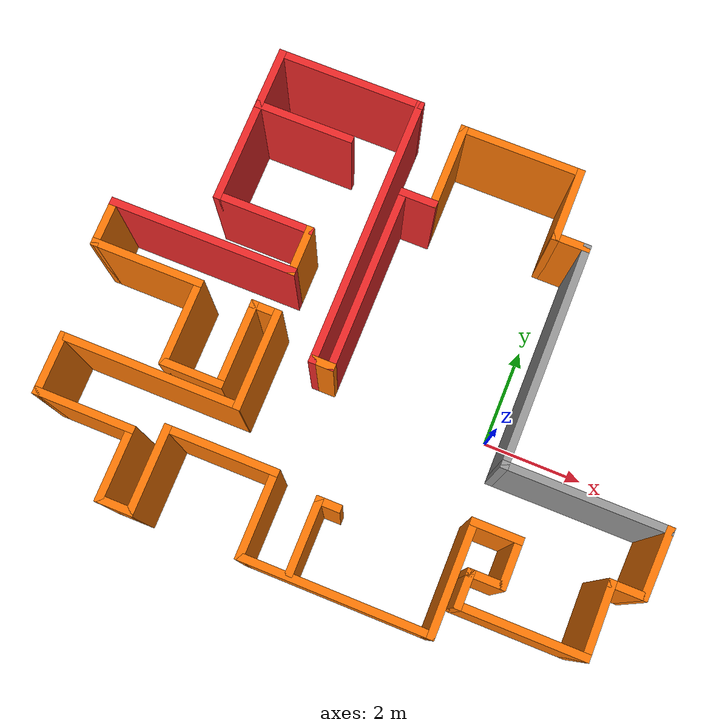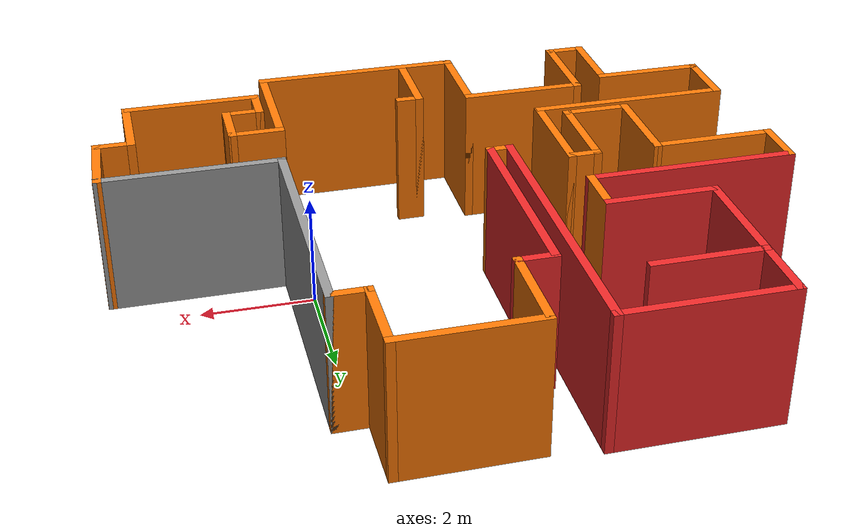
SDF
<?xml version='1.0'?>
<sdf version='1.6'>
  <model name='map_86'>
    <pose frame=''>-2.35722 0.647708 0 0 -0 0</pose>
    <link name='Wall_0'>
      <collision name='Wall_0_Collision'>
        <geometry>
          <box>
            <size>3.25 0.15 2.5</size>
          </box>
        </geometry>
        <pose frame=''>0 0 1.25 0 -0 0</pose>
      </collision>
      <visual name='Wall_0_Visual'>
        <pose frame=''>0 0 1.25 0 -0 0</pose>
        <geometry>
          <box>
            <size>3.25 0.15 2.5</size>
          </box>
        </geometry>
        <material>
          <script>
            <uri>file://media/materials/scripts/gazebo.material</uri>
            <name>Gazebo/Grey</name>
          </script>
          <ambient>1 1 1 1</ambient>
        </material>
        <meta>
          <layer>0</layer>
        </meta>
      </visual>
      <pose frame=''>4.24853 -1.3 0 0 -0 3.14159</pose>
    </link>
    <link name='Wall_1'>
      <collision name='Wall_1_Collision'>
        <geometry>
          <box>
            <size>4.5 0.15 2.5</size>
          </box>
        </geometry>
        <pose frame=''>0 0 1.25 0 -0 0</pose>
      </collision>
      <visual name='Wall_1_Visual'>
        <pose frame=''>0 0 1.25 0 -0 0</pose>
        <geometry>
          <box>
            <size>4.5 0.15 2.5</size>
          </box>
        </geometry>
        <material>
          <script>
            <uri>file://media/materials/scripts/gazebo.material</uri>
            <name>Gazebo/Grey</name>
          </script>
          <ambient>1 1 1 1</ambient>
        </material>
        <meta>
          <layer>0</layer>
        </meta>
      </visual>
      <pose frame=''>2.69853 0.875 0 0 -0 1.5708</pose>
    </link>
    <link name='Wall_10'>
      <collision name='Wall_10_Collision'>
        <geometry>
          <box>
            <size>3 0.15 2.5</size>
          </box>
        </geometry>
        <pose frame=''>0 0 1.25 0 -0 0</pose>
      </collision>
      <visual name='Wall_10_Visual'>
        <pose frame=''>0 0 1.25 0 -0 0</pose>
        <geometry>
          <box>
            <size>3 0.15 2.5</size>
          </box>
        </geometry>
        <material>
          <script>
            <uri>file://media/materials/scripts/gazebo.material</uri>
            <name>Gazebo/Grey</name>
          </script>
          <ambient>0.937255 0.160784 0.160784 1</ambient>
        </material>
        <meta>
          <layer>0</layer>
        </meta>
      </visual>
      <pose frame=''>-2.62647 4.55 0 0 -0 3.14159</pose>
    </link>
    <link name='Wall_11'>
      <collision name='Wall_11_Collision'>
        <geometry>
          <box>
            <size>3.25 0.15 2.5</size>
          </box>
        </geometry>
        <pose frame=''>0 0 1.25 0 -0 0</pose>
      </collision>
      <visual name='Wall_11_Visual'>
        <pose frame=''>0 0 1.25 0 -0 0</pose>
        <geometry>
          <box>
            <size>3.25 0.15 2.5</size>
          </box>
        </geometry>
        <material>
          <script>
            <uri>file://media/materials/scripts/gazebo.material</uri>
            <name>Gazebo/Grey</name>
          </script>
          <ambient>0.937255 0.160784 0.160784 1</ambient>
        </material>
        <meta>
          <layer>0</layer>
        </meta>
      </visual>
      <pose frame=''>-4.05147 3 0 0 -0 -1.5708</pose>
    </link>
    <link name='Wall_12'>
      <collision name='Wall_12_Collision'>
        <geometry>
          <box>
            <size>2 0.15 2.5</size>
          </box>
        </geometry>
        <pose frame=''>0 0 1.25 0 -0 0</pose>
      </collision>
      <visual name='Wall_12_Visual'>
        <pose frame=''>0 0 1.25 0 -0 0</pose>
        <geometry>
          <box>
            <size>2 0.15 2.5</size>
          </box>
        </geometry>
        <material>
          <script>
            <uri>file://media/materials/scripts/gazebo.material</uri>
            <name>Gazebo/Grey</name>
          </script>
          <ambient>0.937255 0.160784 0.160784 1</ambient>
        </material>
        <meta>
          <layer>0</layer>
        </meta>
      </visual>
      <pose frame=''>-3.12647 1.45 0 0 -0 0</pose>
    </link>
    <link name='Wall_13'>
      <collision name='Wall_13_Collision'>
        <geometry>
          <box>
            <size>1 0.15 2.5</size>
          </box>
        </geometry>
        <pose frame=''>0 0 1.25 0 -0 0</pose>
      </collision>
      <visual name='Wall_13_Visual'>
        <pose frame=''>0 0 1.25 0 -0 0</pose>
        <geometry>
          <box>
            <size>1 0.15 2.5</size>
          </box>
        </geometry>
        <material>
          <script>
            <uri>file://media/materials/scripts/gazebo.material</uri>
            <name>Gazebo/Grey</name>
          </script>
          <ambient>0.996078 0.47451 0.0196078 1</ambient>
        </material>
        <meta>
          <layer>0</layer>
        </meta>
      </visual>
      <pose frame=''>-2.20147 1.025 0 0 -0 -1.5708</pose>
    </link>
    <link name='Wall_14'>
      <collision name='Wall_14_Collision'>
        <geometry>
          <box>
            <size>3.75 0.15 2.5</size>
          </box>
        </geometry>
        <pose frame=''>0 0 1.25 0 -0 0</pose>
      </collision>
      <visual name='Wall_14_Visual'>
        <pose frame=''>0 0 1.25 0 -0 0</pose>
        <geometry>
          <box>
            <size>3.75 0.15 2.5</size>
          </box>
        </geometry>
        <material>
          <script>
            <uri>file://media/materials/scripts/gazebo.material</uri>
            <name>Gazebo/Grey</name>
          </script>
          <ambient>0.937255 0.160784 0.160784 1</ambient>
        </material>
        <meta>
          <layer>0</layer>
        </meta>
      </visual>
      <pose frame=''>-4.00147 0.6 0 0 -0 3.14159</pose>
    </link>
    <link name='Wall_15'>
      <collision name='Wall_15_Collision'>
        <geometry>
          <box>
            <size>1 0.15 2.5</size>
          </box>
        </geometry>
        <pose frame=''>0 0 1.25 0 -0 0</pose>
      </collision>
      <visual name='Wall_15_Visual'>
        <pose frame=''>0 0 1.25 0 -0 0</pose>
        <geometry>
          <box>
            <size>1 0.15 2.5</size>
          </box>
        </geometry>
        <material>
          <script>
            <uri>file://media/materials/scripts/gazebo.material</uri>
            <name>Gazebo/Grey</name>
          </script>
          <ambient>0.996078 0.47451 0.0196078 1</ambient>
        </material>
        <meta>
          <layer>0</layer>
        </meta>
      </visual>
      <pose frame=''>-5.80147 0.175 0 0 -0 -1.5708</pose>
    </link>
    <link name='Wall_16'>
      <collision name='Wall_16_Collision'>
        <geometry>
          <box>
            <size>2.25 0.15 2.5</size>
          </box>
        </geometry>
        <pose frame=''>0 0 1.25 0 -0 0</pose>
      </collision>
      <visual name='Wall_16_Visual'>
        <pose frame=''>0 0 1.25 0 -0 0</pose>
        <geometry>
          <box>
            <size>2.25 0.15 2.5</size>
          </box>
        </geometry>
        <material>
          <script>
            <uri>file://media/materials/scripts/gazebo.material</uri>
            <name>Gazebo/Grey</name>
          </script>
          <ambient>0.996078 0.47451 0.0196078 1</ambient>
        </material>
        <meta>
          <layer>0</layer>
        </meta>
      </visual>
      <pose frame=''>-4.75147 -0.25 0 0 -0 0</pose>
    </link>
    <link name='Wall_17'>
      <collision name='Wall_17_Collision'>
        <geometry>
          <box>
            <size>1.75 0.15 2.5</size>
          </box>
        </geometry>
        <pose frame=''>0 0 1.25 0 -0 0</pose>
      </collision>
      <visual name='Wall_17_Visual'>
        <pose frame=''>0 0 1.25 0 -0 0</pose>
        <geometry>
          <box>
            <size>1.75 0.15 2.5</size>
          </box>
        </geometry>
        <material>
          <script>
            <uri>file://media/materials/scripts/gazebo.material</uri>
            <name>Gazebo/Grey</name>
          </script>
          <ambient>0.996078 0.47451 0.0196078 1</ambient>
        </material>
        <meta>
          <layer>0</layer>
        </meta>
      </visual>
      <pose frame=''>-3.70147 -1.05 0 0 -0 -1.5708</pose>
    </link>
    <link name='Wall_18'>
      <collision name='Wall_18_Collision'>
        <geometry>
          <box>
            <size>1.25 0.15 2.5</size>
          </box>
        </geometry>
        <pose frame=''>0 0 1.25 0 -0 0</pose>
      </collision>
      <visual name='Wall_18_Visual'>
        <pose frame=''>0 0 1.25 0 -0 0</pose>
        <geometry>
          <box>
            <size>1.25 0.15 2.5</size>
          </box>
        </geometry>
        <material>
          <script>
            <uri>file://media/materials/scripts/gazebo.material</uri>
            <name>Gazebo/Grey</name>
          </script>
          <ambient>0.996078 0.47451 0.0196078 1</ambient>
        </material>
        <meta>
          <layer>0</layer>
        </meta>
      </visual>
      <pose frame=''>-3.15147 -1.85 0 0 -0 0</pose>
    </link>
    <link name='Wall_19'>
      <collision name='Wall_19_Collision'>
        <geometry>
          <box>
            <size>1.75 0.15 2.5</size>
          </box>
        </geometry>
        <pose frame=''>0 0 1.25 0 -0 0</pose>
      </collision>
      <visual name='Wall_19_Visual'>
        <pose frame=''>0 0 1.25 0 -0 0</pose>
        <geometry>
          <box>
            <size>1.75 0.15 2.5</size>
          </box>
        </geometry>
        <material>
          <script>
            <uri>file://media/materials/scripts/gazebo.material</uri>
            <name>Gazebo/Grey</name>
          </script>
          <ambient>0.996078 0.47451 0.0196078 1</ambient>
        </material>
        <meta>
          <layer>0</layer>
        </meta>
      </visual>
      <pose frame=''>-2.60147 -1.05 0 0 -0 1.5708</pose>
    </link>
    <link name='Wall_2'>
      <collision name='Wall_2_Collision'>
        <geometry>
          <box>
            <size>0.75 0.15 2.5</size>
          </box>
        </geometry>
        <pose frame=''>0 0 1.25 0 -0 0</pose>
      </collision>
      <visual name='Wall_2_Visual'>
        <pose frame=''>0 0 1.25 0 -0 0</pose>
        <geometry>
          <box>
            <size>0.75 0.15 2.5</size>
          </box>
        </geometry>
        <material>
          <script>
            <uri>file://media/materials/scripts/gazebo.material</uri>
            <name>Gazebo/Grey</name>
          </script>
          <ambient>0.996078 0.47451 0.0196078 1</ambient>
        </material>
        <meta>
          <layer>0</layer>
        </meta>
      </visual>
      <pose frame=''>2.39853 3.05 0 0 -0 3.14159</pose>
    </link>
    <link name='Wall_20'>
      <collision name='Wall_20_Collision'>
        <geometry>
          <box>
            <size>0.588086 0.15 2.5</size>
          </box>
        </geometry>
        <pose frame=''>0 0 1.25 0 -0 0</pose>
      </collision>
      <visual name='Wall_20_Visual'>
        <pose frame=''>0 0 1.25 0 -0 0</pose>
        <geometry>
          <box>
            <size>0.588086 0.15 2.5</size>
          </box>
        </geometry>
        <material>
          <script>
            <uri>file://media/materials/scripts/gazebo.material</uri>
            <name>Gazebo/Grey</name>
          </script>
          <ambient>0.996078 0.47451 0.0196078 1</ambient>
        </material>
        <meta>
          <layer>0</layer>
        </meta>
      </visual>
      <pose frame=''>-2.38243 -0.25 0 0 -0 0</pose>
    </link>
    <link name='Wall_21'>
      <collision name='Wall_21_Collision'>
        <geometry>
          <box>
            <size>2 0.15 2.5</size>
          </box>
        </geometry>
        <pose frame=''>0 0 1.25 0 -0 0</pose>
      </collision>
      <visual name='Wall_21_Visual'>
        <pose frame=''>0 0 1.25 0 -0 0</pose>
        <geometry>
          <box>
            <size>2 0.15 2.5</size>
          </box>
        </geometry>
        <material>
          <script>
            <uri>file://media/materials/scripts/gazebo.material</uri>
            <name>Gazebo/Grey</name>
          </script>
          <ambient>0.996078 0.47451 0.0196078 1</ambient>
        </material>
        <meta>
          <layer>0</layer>
        </meta>
      </visual>
      <pose frame=''>-2.14025 -1.175 0 0 -0 -1.5708</pose>
    </link>
    <link name='Wall_22'>
      <collision name='Wall_22_Collision'>
        <geometry>
          <box>
            <size>3.58809 0.15 2.5</size>
          </box>
        </geometry>
        <pose frame=''>0 0 1.25 0 -0 0</pose>
      </collision>
      <visual name='Wall_22_Visual'>
        <pose frame=''>0 0 1.25 0 -0 0</pose>
        <geometry>
          <box>
            <size>3.58809 0.15 2.5</size>
          </box>
        </geometry>
        <material>
          <script>
            <uri>file://media/materials/scripts/gazebo.material</uri>
            <name>Gazebo/Grey</name>
          </script>
          <ambient>0.996078 0.47451 0.0196078 1</ambient>
        </material>
        <meta>
          <layer>0</layer>
        </meta>
      </visual>
      <pose frame=''>-3.88243 -2.1 0 0 -0 3.14159</pose>
    </link>
    <link name='Wall_23'>
      <collision name='Wall_23_Collision'>
        <geometry>
          <box>
            <size>1.25 0.15 2.5</size>
          </box>
        </geometry>
        <pose frame=''>0 0 1.25 0 -0 0</pose>
      </collision>
      <visual name='Wall_23_Visual'>
        <pose frame=''>0 0 1.25 0 -0 0</pose>
        <geometry>
          <box>
            <size>1.25 0.15 2.5</size>
          </box>
        </geometry>
        <material>
          <script>
            <uri>file://media/materials/scripts/gazebo.material</uri>
            <name>Gazebo/Grey</name>
          </script>
          <ambient>0.996078 0.47451 0.0196078 1</ambient>
        </material>
        <meta>
          <layer>0</layer>
        </meta>
      </visual>
      <pose frame=''>-5.60147 -2.65 0 0 -0 -1.5708</pose>
    </link>
    <link name='Wall_24'>
      <collision name='Wall_24_Collision'>
        <geometry>
          <box>
            <size>2 0.15 2.5</size>
          </box>
        </geometry>
        <pose frame=''>0 0 1.25 0 -0 0</pose>
      </collision>
      <visual name='Wall_24_Visual'>
        <pose frame=''>0 0 1.25 0 -0 0</pose>
        <geometry>
          <box>
            <size>2 0.15 2.5</size>
          </box>
        </geometry>
        <material>
          <script>
            <uri>file://media/materials/scripts/gazebo.material</uri>
            <name>Gazebo/Grey</name>
          </script>
          <ambient>0.996078 0.47451 0.0196078 1</ambient>
        </material>
        <meta>
          <layer>0</layer>
        </meta>
      </visual>
      <pose frame=''>-4.67647 -3.2 0 0 -0 0</pose>
    </link>
    <link name='Wall_25'>
      <collision name='Wall_25_Collision'>
        <geometry>
          <box>
            <size>1.5 0.15 2.5</size>
          </box>
        </geometry>
        <pose frame=''>0 0 1.25 0 -0 0</pose>
      </collision>
      <visual name='Wall_25_Visual'>
        <pose frame=''>0 0 1.25 0 -0 0</pose>
        <geometry>
          <box>
            <size>1.5 0.15 2.5</size>
          </box>
        </geometry>
        <material>
          <script>
            <uri>file://media/materials/scripts/gazebo.material</uri>
            <name>Gazebo/Grey</name>
          </script>
          <ambient>0.996078 0.47451 0.0196078 1</ambient>
        </material>
        <meta>
          <layer>0</layer>
        </meta>
      </visual>
      <pose frame=''>-3.75147 -3.875 0 0 -0 -1.5708</pose>
    </link>
    <link name='Wall_26'>
      <collision name='Wall_26_Collision'>
        <geometry>
          <box>
            <size>0.75 0.15 2.5</size>
          </box>
        </geometry>
        <pose frame=''>0 0 1.25 0 -0 0</pose>
      </collision>
      <visual name='Wall_26_Visual'>
        <pose frame=''>0 0 1.25 0 -0 0</pose>
        <geometry>
          <box>
            <size>0.75 0.15 2.5</size>
          </box>
        </geometry>
        <material>
          <script>
            <uri>file://media/materials/scripts/gazebo.material</uri>
            <name>Gazebo/Grey</name>
          </script>
          <ambient>0.996078 0.47451 0.0196078 1</ambient>
        </material>
        <meta>
          <layer>0</layer>
        </meta>
      </visual>
      <pose frame=''>-3.45147 -4.55 0 0 -0 0</pose>
    </link>
    <link name='Wall_27'>
      <collision name='Wall_27_Collision'>
        <geometry>
          <box>
            <size>1.75 0.15 2.5</size>
          </box>
        </geometry>
        <pose frame=''>0 0 1.25 0 -0 0</pose>
      </collision>
      <visual name='Wall_27_Visual'>
        <pose frame=''>0 0 1.25 0 -0 0</pose>
        <geometry>
          <box>
            <size>1.75 0.15 2.5</size>
          </box>
        </geometry>
        <material>
          <script>
            <uri>file://media/materials/scripts/gazebo.material</uri>
            <name>Gazebo/Grey</name>
          </script>
          <ambient>0.996078 0.47451 0.0196078 1</ambient>
        </material>
        <meta>
          <layer>0</layer>
        </meta>
      </visual>
      <pose frame=''>-3.15147 -3.75 0 0 -0 1.5708</pose>
    </link>
    <link name='Wall_28'>
      <collision name='Wall_28_Collision'>
        <geometry>
          <box>
            <size>2.25 0.15 2.5</size>
          </box>
        </geometry>
        <pose frame=''>0 0 1.25 0 -0 0</pose>
      </collision>
      <visual name='Wall_28_Visual'>
        <pose frame=''>0 0 1.25 0 -0 0</pose>
        <geometry>
          <box>
            <size>2.25 0.15 2.5</size>
          </box>
        </geometry>
        <material>
          <script>
            <uri>file://media/materials/scripts/gazebo.material</uri>
            <name>Gazebo/Grey</name>
          </script>
          <ambient>0.996078 0.47451 0.0196078 1</ambient>
        </material>
        <meta>
          <layer>0</layer>
        </meta>
      </visual>
      <pose frame=''>-2.10147 -2.95 0 0 -0 0</pose>
    </link>
    <link name='Wall_29'>
      <collision name='Wall_29_Collision'>
        <geometry>
          <box>
            <size>1.75 0.15 2.5</size>
          </box>
        </geometry>
        <pose frame=''>0 0 1.25 0 -0 0</pose>
      </collision>
      <visual name='Wall_29_Visual'>
        <pose frame=''>0 0 1.25 0 -0 0</pose>
        <geometry>
          <box>
            <size>1.75 0.15 2.5</size>
          </box>
        </geometry>
        <material>
          <script>
            <uri>file://media/materials/scripts/gazebo.material</uri>
            <name>Gazebo/Grey</name>
          </script>
          <ambient>0.996078 0.47451 0.0196078 1</ambient>
        </material>
        <meta>
          <layer>0</layer>
        </meta>
      </visual>
      <pose frame=''>-1.05147 -3.75 0 0 -0 -1.5708</pose>
    </link>
    <link name='Wall_3'>
      <collision name='Wall_3_Collision'>
        <geometry>
          <box>
            <size>1.5 0.15 2.5</size>
          </box>
        </geometry>
        <pose frame=''>0 0 1.25 0 -0 0</pose>
      </collision>
      <visual name='Wall_3_Visual'>
        <pose frame=''>0 0 1.25 0 -0 0</pose>
        <geometry>
          <box>
            <size>1.5 0.15 2.5</size>
          </box>
        </geometry>
        <material>
          <script>
            <uri>file://media/materials/scripts/gazebo.material</uri>
            <name>Gazebo/Grey</name>
          </script>
          <ambient>0.996078 0.47451 0.0196078 1</ambient>
        </material>
        <meta>
          <layer>0</layer>
        </meta>
      </visual>
      <pose frame=''>2.09853 3.725 0 0 -0 1.5708</pose>
    </link>
    <link name='Wall_30'>
      <collision name='Wall_30_Collision'>
        <geometry>
          <box>
            <size>3.75 0.15 2.5</size>
          </box>
        </geometry>
        <pose frame=''>0 0 1.25 0 -0 0</pose>
      </collision>
      <visual name='Wall_30_Visual'>
        <pose frame=''>0 0 1.25 0 -0 0</pose>
        <geometry>
          <box>
            <size>3.75 0.15 2.5</size>
          </box>
        </geometry>
        <material>
          <script>
            <uri>file://media/materials/scripts/gazebo.material</uri>
            <name>Gazebo/Grey</name>
          </script>
          <ambient>0.996078 0.47451 0.0196078 1</ambient>
        </material>
        <meta>
          <layer>0</layer>
        </meta>
      </visual>
      <pose frame=''>0.748531 -4.55 0 0 -0 0</pose>
    </link>
    <link name='Wall_31'>
      <collision name='Wall_31_Collision'>
        <geometry>
          <box>
            <size>2.25 0.15 2.5</size>
          </box>
        </geometry>
        <pose frame=''>0 0 1.25 0 -0 0</pose>
      </collision>
      <visual name='Wall_31_Visual'>
        <pose frame=''>0 0 1.25 0 -0 0</pose>
        <geometry>
          <box>
            <size>2.25 0.15 2.5</size>
          </box>
        </geometry>
        <material>
          <script>
            <uri>file://media/materials/scripts/gazebo.material</uri>
            <name>Gazebo/Grey</name>
          </script>
          <ambient>0.996078 0.47451 0.0196078 1</ambient>
        </material>
        <meta>
          <layer>0</layer>
        </meta>
      </visual>
      <pose frame=''>2.54853 -3.5 0 0 -0 1.5708</pose>
    </link>
    <link name='Wall_32'>
      <collision name='Wall_32_Collision'>
        <geometry>
          <box>
            <size>1 0.15 2.5</size>
          </box>
        </geometry>
        <pose frame=''>0 0 1.25 0 -0 0</pose>
      </collision>
      <visual name='Wall_32_Visual'>
        <pose frame=''>0 0 1.25 0 -0 0</pose>
        <geometry>
          <box>
            <size>1 0.15 2.5</size>
          </box>
        </geometry>
        <material>
          <script>
            <uri>file://media/materials/scripts/gazebo.material</uri>
            <name>Gazebo/Grey</name>
          </script>
          <ambient>0.996078 0.47451 0.0196078 1</ambient>
        </material>
        <meta>
          <layer>0</layer>
        </meta>
      </visual>
      <pose frame=''>2.97353 -2.45 0 0 -0 0</pose>
    </link>
    <link name='Wall_33'>
      <collision name='Wall_33_Collision'>
        <geometry>
          <box>
            <size>1 0.15 2.5</size>
          </box>
        </geometry>
        <pose frame=''>0 0 1.25 0 -0 0</pose>
      </collision>
      <visual name='Wall_33_Visual'>
        <pose frame=''>0 0 1.25 0 -0 0</pose>
        <geometry>
          <box>
            <size>1 0.15 2.5</size>
          </box>
        </geometry>
        <material>
          <script>
            <uri>file://media/materials/scripts/gazebo.material</uri>
            <name>Gazebo/Grey</name>
          </script>
          <ambient>0.996078 0.47451 0.0196078 1</ambient>
        </material>
        <meta>
          <layer>0</layer>
        </meta>
      </visual>
      <pose frame=''>3.39853 -2.875 0 0 -0 -1.5708</pose>
    </link>
    <link name='Wall_34'>
      <collision name='Wall_34_Collision'>
        <geometry>
          <box>
            <size>0.75 0.15 2.5</size>
          </box>
        </geometry>
        <pose frame=''>0 0 1.25 0 -0 0</pose>
      </collision>
      <visual name='Wall_34_Visual'>
        <pose frame=''>0 0 1.25 0 -0 0</pose>
        <geometry>
          <box>
            <size>0.75 0.15 2.5</size>
          </box>
        </geometry>
        <material>
          <script>
            <uri>file://media/materials/scripts/gazebo.material</uri>
            <name>Gazebo/Grey</name>
          </script>
          <ambient>0.996078 0.47451 0.0196078 1</ambient>
        </material>
        <meta>
          <layer>0</layer>
        </meta>
      </visual>
      <pose frame=''>3.09853 -3.3 0 0 -0 3.14159</pose>
    </link>
    <link name='Wall_35'>
      <collision name='Wall_35_Collision'>
        <geometry>
          <box>
            <size>0.75 0.15 2.5</size>
          </box>
        </geometry>
        <pose frame=''>0 0 1.25 0 -0 0</pose>
      </collision>
      <visual name='Wall_35_Visual'>
        <pose frame=''>0 0 1.25 0 -0 0</pose>
        <geometry>
          <box>
            <size>0.75 0.15 2.5</size>
          </box>
        </geometry>
        <material>
          <script>
            <uri>file://media/materials/scripts/gazebo.material</uri>
            <name>Gazebo/Grey</name>
          </script>
          <ambient>0.996078 0.47451 0.0196078 1</ambient>
        </material>
        <meta>
          <layer>0</layer>
        </meta>
      </visual>
      <pose frame=''>2.79853 -3.6 0 0 -0 -1.5708</pose>
    </link>
    <link name='Wall_36'>
      <collision name='Wall_36_Collision'>
        <geometry>
          <box>
            <size>2.5 0.15 2.5</size>
          </box>
        </geometry>
        <pose frame=''>0 0 1.25 0 -0 0</pose>
      </collision>
      <visual name='Wall_36_Visual'>
        <pose frame=''>0 0 1.25 0 -0 0</pose>
        <geometry>
          <box>
            <size>2.5 0.15 2.5</size>
          </box>
        </geometry>
        <material>
          <script>
            <uri>file://media/materials/scripts/gazebo.material</uri>
            <name>Gazebo/Grey</name>
          </script>
          <ambient>0.996078 0.47451 0.0196078 1</ambient>
        </material>
        <meta>
          <layer>0</layer>
        </meta>
      </visual>
      <pose frame=''>3.97353 -3.9 0 0 -0 0</pose>
    </link>
    <link name='Wall_37'>
      <collision name='Wall_37_Collision'>
        <geometry>
          <box>
            <size>1.5 0.15 2.5</size>
          </box>
        </geometry>
        <pose frame=''>0 0 1.25 0 -0 0</pose>
      </collision>
      <visual name='Wall_37_Visual'>
        <pose frame=''>0 0 1.25 0 -0 0</pose>
        <geometry>
          <box>
            <size>1.5 0.15 2.5</size>
          </box>
        </geometry>
        <material>
          <script>
            <uri>file://media/materials/scripts/gazebo.material</uri>
            <name>Gazebo/Grey</name>
          </script>
          <ambient>0.996078 0.47451 0.0196078 1</ambient>
        </material>
        <meta>
          <layer>0</layer>
        </meta>
      </visual>
      <pose frame=''>5.14853 -3.225 0 0 -0 1.5708</pose>
    </link>
    <link name='Wall_38'>
      <collision name='Wall_38_Collision'>
        <geometry>
          <box>
            <size>0.75 0.15 2.5</size>
          </box>
        </geometry>
        <pose frame=''>0 0 1.25 0 -0 0</pose>
      </collision>
      <visual name='Wall_38_Visual'>
        <pose frame=''>0 0 1.25 0 -0 0</pose>
        <geometry>
          <box>
            <size>0.75 0.15 2.5</size>
          </box>
        </geometry>
        <material>
          <script>
            <uri>file://media/materials/scripts/gazebo.material</uri>
            <name>Gazebo/Grey</name>
          </script>
          <ambient>0.996078 0.47451 0.0196078 1</ambient>
        </material>
        <meta>
          <layer>0</layer>
        </meta>
      </visual>
      <pose frame=''>5.44853 -2.55 0 0 -0 0</pose>
    </link>
    <link name='Wall_39'>
      <collision name='Wall_39_Collision'>
        <geometry>
          <box>
            <size>1.401 0.15 2.5</size>
          </box>
        </geometry>
        <pose frame=''>0 0 1.25 0 -0 0</pose>
      </collision>
      <visual name='Wall_39_Visual'>
        <pose frame=''>0 0 1.25 0 -0 0</pose>
        <geometry>
          <box>
            <size>1.401 0.15 2.5</size>
          </box>
        </geometry>
        <material>
          <script>
            <uri>file://media/materials/scripts/gazebo.material</uri>
            <name>Gazebo/Grey</name>
          </script>
          <ambient>0.996078 0.47451 0.0196078 1</ambient>
        </material>
        <meta>
          <layer>0</layer>
        </meta>
      </visual>
      <pose frame=''>5.77353 -1.925 0 0 -0 1.53082</pose>
    </link>
    <link name='Wall_4'>
      <collision name='Wall_4_Collision'>
        <geometry>
          <box>
            <size>2.5 0.15 2.5</size>
          </box>
        </geometry>
        <pose frame=''>0 0 1.25 0 -0 0</pose>
      </collision>
      <visual name='Wall_4_Visual'>
        <pose frame=''>0 0 1.25 0 -0 0</pose>
        <geometry>
          <box>
            <size>2.5 0.15 2.5</size>
          </box>
        </geometry>
        <material>
          <script>
            <uri>file://media/materials/scripts/gazebo.material</uri>
            <name>Gazebo/Grey</name>
          </script>
          <ambient>0.996078 0.47451 0.0196078 1</ambient>
        </material>
        <meta>
          <layer>0</layer>
        </meta>
      </visual>
      <pose frame=''>0.923531 4.4 0 0 -0 3.14159</pose>
    </link>
    <link name='Wall_40'>
      <collision name='Wall_40_Collision'>
        <geometry>
          <box>
            <size>3.25 0.15 2.5</size>
          </box>
        </geometry>
        <pose frame=''>0 0 1.25 0 -0 0</pose>
      </collision>
      <visual name='Wall_40_Visual'>
        <pose frame=''>0 0 1.25 0 -0 0</pose>
        <geometry>
          <box>
            <size>3.25 0.15 2.5</size>
          </box>
        </geometry>
        <material>
          <script>
            <uri>file://media/materials/scripts/gazebo.material</uri>
            <name>Gazebo/Grey</name>
          </script>
          <ambient>0.996078 0.47451 0.0196078 1</ambient>
        </material>
        <meta>
          <layer>0</layer>
        </meta>
      </visual>
      <pose frame=''>4.24853 -1.3 0 0 -0 3.14159</pose>
    </link>
    <link name='Wall_41'>
      <collision name='Wall_41_Collision'>
        <geometry>
          <box>
            <size>4.5 0.15 2.5</size>
          </box>
        </geometry>
        <pose frame=''>0 0 1.25 0 -0 0</pose>
      </collision>
      <visual name='Wall_41_Visual'>
        <pose frame=''>0 0 1.25 0 -0 0</pose>
        <geometry>
          <box>
            <size>4.5 0.15 2.5</size>
          </box>
        </geometry>
        <material>
          <script>
            <uri>file://media/materials/scripts/gazebo.material</uri>
            <name>Gazebo/Grey</name>
          </script>
          <ambient>0.996078 0.47451 0.0196078 1</ambient>
        </material>
        <meta>
          <layer>0</layer>
        </meta>
      </visual>
      <pose frame=''>2.69853 0.875 0 0 -0 1.5708</pose>
    </link>
    <link name='Wall_43'>
      <collision name='Wall_43_Collision'>
        <geometry>
          <box>
            <size>2 0.15 2.5</size>
          </box>
        </geometry>
        <pose frame=''>0 0 1.25 0 -0 0</pose>
      </collision>
      <visual name='Wall_43_Visual'>
        <pose frame=''>0 0 1.25 0 -0 0</pose>
        <geometry>
          <box>
            <size>2 0.15 2.5</size>
          </box>
        </geometry>
        <material>
          <script>
            <uri>file://media/materials/scripts/gazebo.material</uri>
            <name>Gazebo/Grey</name>
          </script>
          <ambient>0.937255 0.160784 0.160784 1</ambient>
        </material>
        <meta>
          <layer>0</layer>
        </meta>
      </visual>
      <pose frame=''>-3.11865 3.41661 0 0 -0 0</pose>
    </link>
    <link name='Wall_45'>
      <collision name='Wall_45_Collision'>
        <geometry>
          <box>
            <size>1.5 0.15 2.5</size>
          </box>
        </geometry>
        <pose frame=''>0 0 1.25 0 -0 0</pose>
      </collision>
      <visual name='Wall_45_Visual'>
        <pose frame=''>0 0 1.25 0 -0 0</pose>
        <geometry>
          <box>
            <size>1.5 0.15 2.5</size>
          </box>
        </geometry>
        <material>
          <script>
            <uri>file://media/materials/scripts/gazebo.material</uri>
            <name>Gazebo/Grey</name>
          </script>
          <ambient>0.996078 0.47451 0.0196078 1</ambient>
        </material>
        <meta>
          <layer>0</layer>
        </meta>
      </visual>
      <pose frame=''>-0.134574 -3.79592 0 0 -0 1.5708</pose>
    </link>
    <link name='Wall_46'>
      <collision name='Wall_46_Collision'>
        <geometry>
          <box>
            <size>0.5 0.15 2.5</size>
          </box>
        </geometry>
        <pose frame=''>0 0 1.25 0 -0 0</pose>
      </collision>
      <visual name='Wall_46_Visual'>
        <pose frame=''>0 0 1.25 0 -0 0</pose>
        <geometry>
          <box>
            <size>0.5 0.15 2.5</size>
          </box>
        </geometry>
        <material>
          <script>
            <uri>file://media/materials/scripts/gazebo.material</uri>
            <name>Gazebo/Grey</name>
          </script>
          <ambient>0.996078 0.47451 0.0196078 1</ambient>
        </material>
        <meta>
          <layer>0</layer>
        </meta>
      </visual>
      <pose frame=''>0.040426 -3.12092 0 0 -0 0</pose>
    </link>
    <link name='Wall_5'>
      <collision name='Wall_5_Collision'>
        <geometry>
          <box>
            <size>1.75 0.15 2.5</size>
          </box>
        </geometry>
        <pose frame=''>0 0 1.25 0 -0 0</pose>
      </collision>
      <visual name='Wall_5_Visual'>
        <pose frame=''>0 0 1.25 0 -0 0</pose>
        <geometry>
          <box>
            <size>1.75 0.15 2.5</size>
          </box>
        </geometry>
        <material>
          <script>
            <uri>file://media/materials/scripts/gazebo.material</uri>
            <name>Gazebo/Grey</name>
          </script>
          <ambient>0.996078 0.47451 0.0196078 1</ambient>
        </material>
        <meta>
          <layer>0</layer>
        </meta>
      </visual>
      <pose frame=''>-0.251469 3.6 0 0 -0 -1.5708</pose>
    </link>
    <link name='Wall_6'>
      <collision name='Wall_6_Collision'>
        <geometry>
          <box>
            <size>0.75 0.15 2.5</size>
          </box>
        </geometry>
        <pose frame=''>0 0 1.25 0 -0 0</pose>
      </collision>
      <visual name='Wall_6_Visual'>
        <pose frame=''>0 0 1.25 0 -0 0</pose>
        <geometry>
          <box>
            <size>0.75 0.15 2.5</size>
          </box>
        </geometry>
        <material>
          <script>
            <uri>file://media/materials/scripts/gazebo.material</uri>
            <name>Gazebo/Grey</name>
          </script>
          <ambient>0.937255 0.160784 0.160784 1</ambient>
        </material>
        <meta>
          <layer>0</layer>
        </meta>
      </visual>
      <pose frame=''>-0.551469 2.8 0 0 -0 3.14159</pose>
    </link>
    <link name='Wall_7'>
      <collision name='Wall_7_Collision'>
        <geometry>
          <box>
            <size>3.75 0.15 2.5</size>
          </box>
        </geometry>
        <pose frame=''>0 0 1.25 0 -0 0</pose>
      </collision>
      <visual name='Wall_7_Visual'>
        <pose frame=''>0 0 1.25 0 -0 0</pose>
        <geometry>
          <box>
            <size>3.75 0.15 2.5</size>
          </box>
        </geometry>
        <material>
          <script>
            <uri>file://media/materials/scripts/gazebo.material</uri>
            <name>Gazebo/Grey</name>
          </script>
          <ambient>0.937255 0.160784 0.160784 1</ambient>
        </material>
        <meta>
          <layer>0</layer>
        </meta>
      </visual>
      <pose frame=''>-0.851469 1 0 0 -0 -1.5708</pose>
    </link>
    <link name='Wall_8'>
      <collision name='Wall_8_Collision'>
        <geometry>
          <box>
            <size>0.5 0.15 2.5</size>
          </box>
        </geometry>
        <pose frame=''>0 0 1.25 0 -0 0</pose>
      </collision>
      <visual name='Wall_8_Visual'>
        <pose frame=''>0 0 1.25 0 -0 0</pose>
        <geometry>
          <box>
            <size>0.5 0.15 2.5</size>
          </box>
        </geometry>
        <material>
          <script>
            <uri>file://media/materials/scripts/gazebo.material</uri>
            <name>Gazebo/Grey</name>
          </script>
          <ambient>0.996078 0.47451 0.0196078 1</ambient>
        </material>
        <meta>
          <layer>0</layer>
        </meta>
      </visual>
      <pose frame=''>-1.02647 -0.8 0 0 -0 3.14159</pose>
    </link>
    <link name='Wall_9'>
      <collision name='Wall_9_Collision'>
        <geometry>
          <box>
            <size>5.5 0.15 2.5</size>
          </box>
        </geometry>
        <pose frame=''>0 0 1.25 0 -0 0</pose>
      </collision>
      <visual name='Wall_9_Visual'>
        <pose frame=''>0 0 1.25 0 -0 0</pose>
        <geometry>
          <box>
            <size>5.5 0.15 2.5</size>
          </box>
        </geometry>
        <material>
          <script>
            <uri>file://media/materials/scripts/gazebo.material</uri>
            <name>Gazebo/Grey</name>
          </script>
          <ambient>0.937255 0.160784 0.160784 1</ambient>
        </material>
        <meta>
          <layer>0</layer>
        </meta>
      </visual>
      <pose frame=''>-1.20147 1.875 0 0 -0 1.5708</pose>
    </link>
    <static>1</static>
  </model>
</sdf>
